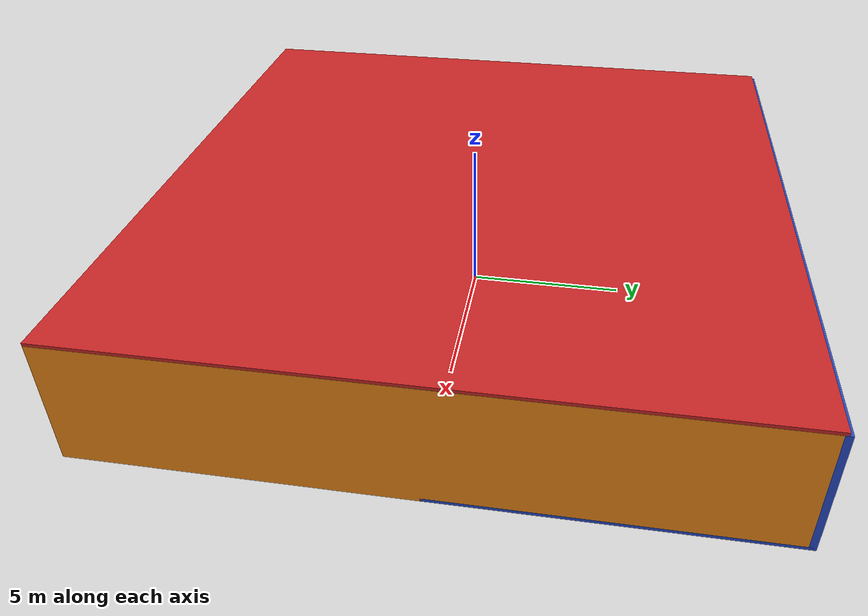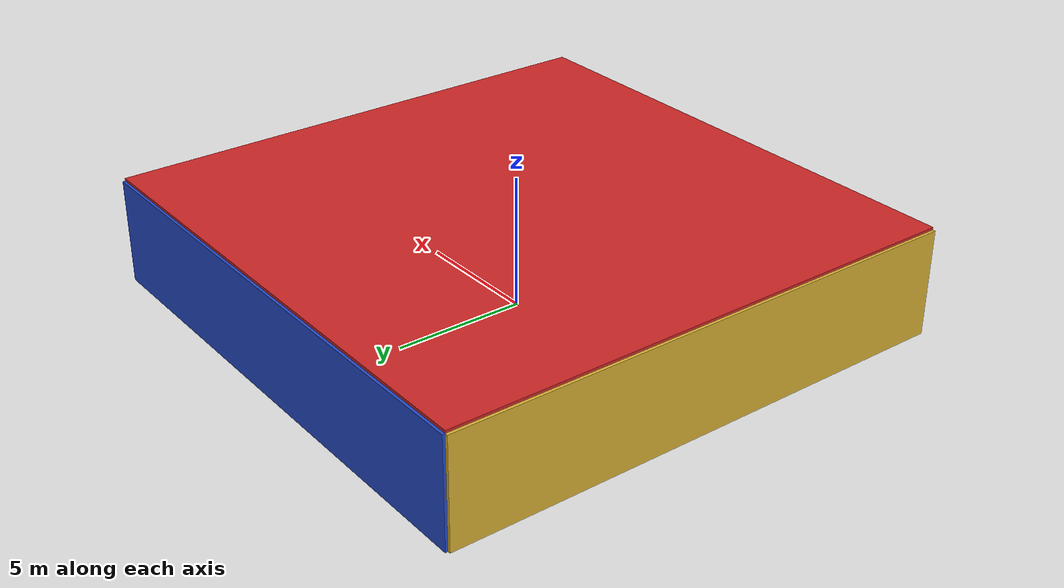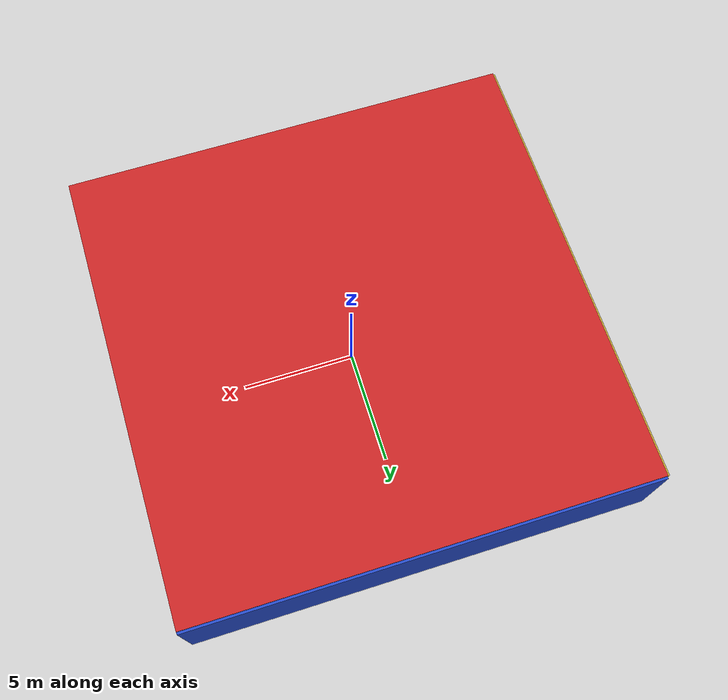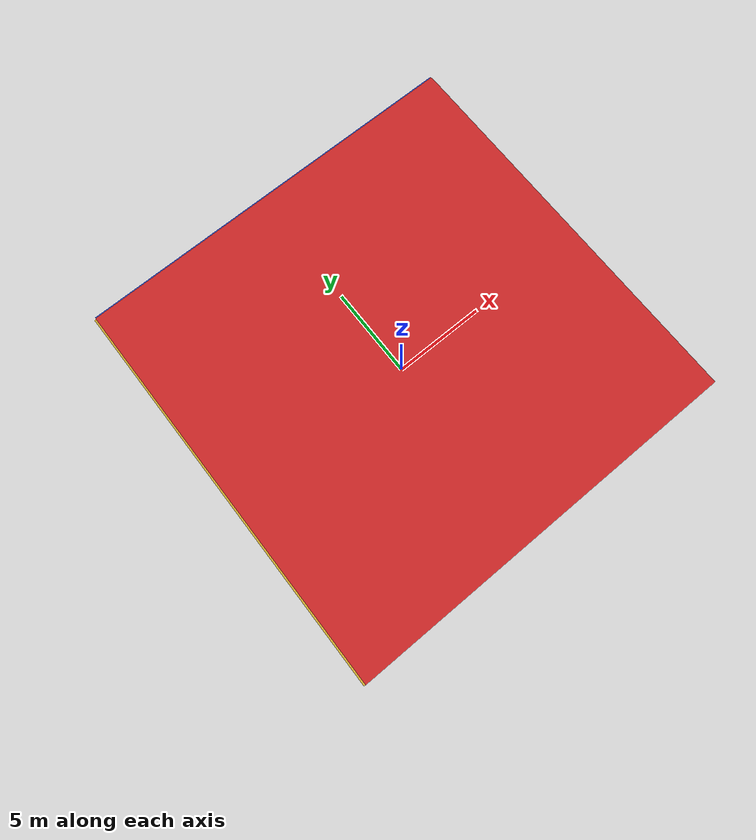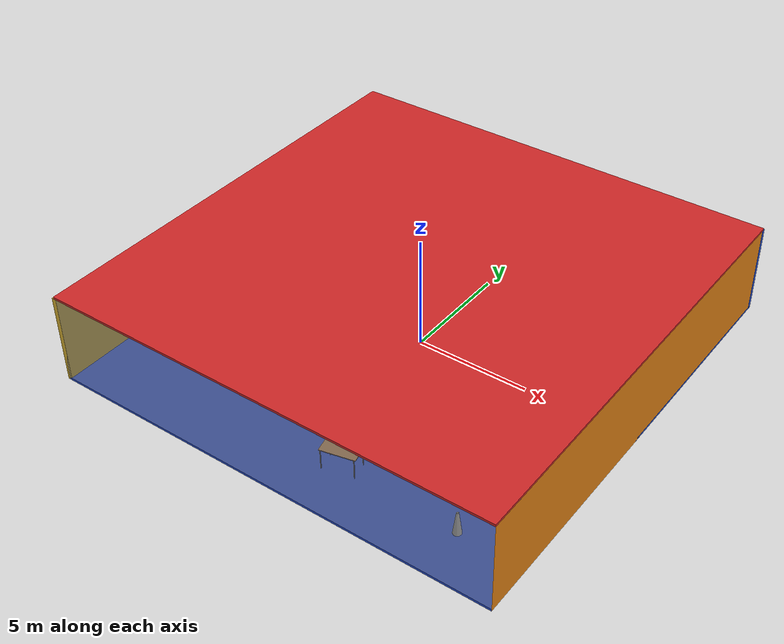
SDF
<sdf version="1.4">
 <world name="default">
  <physics type="ode">
   <max_step_size>0.001</max_step_size>
   <real_time_factor>1</real_time_factor>
   <real_time_update_rate>1000</real_time_update_rate>
   <gravity>0 0 -9.8</gravity>
  </physics>
  <scene><ambient>0.4 0.4 0.4 1</ambient><background>0.7 0.7 0.7 1</background><shadows>1</shadows></scene>
  <model name="Surrounding">
   <static>1</static>
   <link name="Ceiling">
    <collision name="Ceiling_Collision"><geometry><box><size>20 20 0.1</size></box></geometry></collision>
    <visual name="Ceiling_Visual">
     <geometry><box><size>20 20 0.1</size></box></geometry>
     <material>
      <script><uri>file://media/materials/scripts/gazebo.material</uri><name>Gazebo/Red</name></script>
     </material>
    </visual>
    <pose>0 0 4.05 0 0 0</pose>
   </link>
   <link name="Wall_South">
    <collision name="Wall_South_Collision">
     <geometry><box><size>20 0 4</size></box></geometry>
     <pose>0 0 2 0 -0 0</pose>
    </collision>
    <visual name="Wall_South_Visual">
     <pose>0 0 2 0 -0 0</pose>
     <geometry><box><size>20 0 4</size></box></geometry>
     <material>
      <script><uri>file://media/materials/scripts/gazebo.material</uri><name>Gazebo/GreyTransparent</name></script>
     </material>
    </visual>
    <velocity_decay><linear>0</linear><angular>0</angular></velocity_decay>
    <pose>0 -10 0 0 -0 0</pose>
   </link>
   <link name="Wall_East">
    <collision name="Wall_21_Collision">
     <geometry><box><size>20 0 4</size></box></geometry>
     <pose>0 0 2 0 -0 0</pose>
    </collision>
    <visual name="Wall_21_Visual">
     <pose>0 0 2 0 -0 0</pose>
     <geometry><box><size>20 0 4</size></box></geometry>
     <material>
      <script><uri>file://media/materials/scripts/gazebo.material</uri><name>Gazebo/Orange</name></script>
     </material>
    </visual>
    <velocity_decay><linear>0</linear><angular>0</angular></velocity_decay>
    <pose>10 0 0 0 -0 1.5708</pose>
   </link>
   <link name="Wall_North">
    <collision name="Wall_22_Collision">
     <geometry><box><size>20 0.2 4</size></box></geometry>
     <pose>0 0 2 0 -0 0</pose>
    </collision>
    <visual name="Wall_22_Visual">
     <pose>0 0 2 0 -0 0</pose>
     <geometry><box><size>20 0.2 4</size></box></geometry>
     <material>
      <script><uri>file://media/materials/scripts/gazebo.material</uri><name>Gazebo/Blue</name></script>
     </material>
    </visual>
    <velocity_decay><linear>0</linear><angular>0</angular></velocity_decay>
    <pose>0 10 0 0 -0 0</pose>
   </link>
   <link name="Wall_West">
    <collision name="Wall_23_Collision">
     <geometry><box><size>20 0.2 4</size></box></geometry>
     <pose>0 0 2 0 -0 0</pose>
    </collision>
    <visual name="Wall_23_Visual">
     <pose>0 0 2 0 -0 0</pose>
     <geometry><box><size>20 0.2 4</size></box></geometry>
     <material>
      <script><uri>file://media/materials/scripts/gazebo.material</uri><name>Gazebo/Gold</name></script>
     </material>
    </visual>
    <velocity_decay><linear>0</linear><angular>0</angular></velocity_decay>
    <pose>-10 0 0 0 0 -1.5708</pose>
   </link>
   <link name="Ground_link">
    <collision name="collision">
     <pose>0 0 .05 0 -0 0</pose>
     <geometry><box><size>20 20 0.1</size></box></geometry>
    </collision>
    <visual name="visual">
     <pose>0 0 .05 0 -0 0</pose>
     <geometry><box><size>20 20 0.1</size></box></geometry>
     <material>
      <script><uri>file://media/materials/scripts/gazebo.material</uri><name>Gazebo/Blue</name></script>
     </material>
    </visual>
   </link>
   <static>1</static>
  </model>
  <spherical_coordinates>
   <surface_model>EARTH_WGS84</surface_model>
   <latitude_deg>0</latitude_deg>
   <longitude_deg>0</longitude_deg>
   <elevation>0</elevation>
   <heading_deg>0</heading_deg>
  </spherical_coordinates>
  <light name="lightball_0" type="diffuse">
   <diffuse>0.8 0.8 0.8 1</diffuse>
   <specular>0.2 0.2 0.2 1</specular>
   <attenuation>
    <range>100</range>
    <constant>0.7</constant>
    <linear>0.01</linear>
    <quadratic>0.001</quadratic>
   </attenuation>
   <direction>-0.5 0.1 -0.9</direction>
   <pose>2.17305843992 1.36471770103 2.611370943 0 0 0</pose>
  </light>
  <light name="lightball_1" type="diffuse">
   <diffuse>0.8 0.8 0.8 1</diffuse>
   <specular>0.2 0.2 0.2 1</specular>
   <attenuation>
    <range>100</range>
    <constant>0.7</constant>
    <linear>0.01</linear>
    <quadratic>0.001</quadratic>
   </attenuation>
   <direction>-0.5 0.1 -0.9</direction>
   <pose>-4.76901258983 4.87339151621 3.73119985481 0 0 0</pose>
  </light>
  <light name="lightball_2" type="diffuse">
   <diffuse>0.8 0.8 0.8 1</diffuse>
   <specular>0.2 0.2 0.2 1</specular>
   <attenuation>
    <range>100</range>
    <constant>0.7</constant>
    <linear>0.01</linear>
    <quadratic>0.001</quadratic>
   </attenuation>
   <direction>-0.5 0.1 -0.9</direction>
   <pose>2.91544557779 -0.584286462981 2.58790182389 0 0 0</pose>
  </light>
  <light name="lightball_3" type="diffuse">
   <diffuse>0.8 0.8 0.8 1</diffuse>
   <specular>0.2 0.2 0.2 1</specular>
   <attenuation>
    <range>100</range>
    <constant>0.7</constant>
    <linear>0.01</linear>
    <quadratic>0.001</quadratic>
   </attenuation>
   <direction>-0.5 0.1 -0.9</direction>
   <pose>6.88723795913 -2.91094983466 2.4075429363 0 0 0</pose>
  </light>
  <include><uri>model://table</uri><pose>1.90975543747 -7.64242599549 0 0 0 0.21630113805</pose></include>
  <include>
   <uri>model://construction_cone</uri>
   <pose>1.48726757587 7.16257394565 0 0 0 0.561137591114</pose>
  </include>
  <include>
   <uri>model://construction_cone</uri>
   <pose>7.18095831067 -7.87780362027 0 0 0 2.1545833686</pose>
  </include>
 </world>
</sdf>

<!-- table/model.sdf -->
<sdf version="1.5">
  <model name="table">
    <static>true</static>
    <link name="link">
      <collision name="surface">
        <pose>0 0 1.0 0 0 0</pose>
        <geometry>
          <box>
            <size>1.5 0.8 0.03</size>
          </box>
        </geometry>
        <surface>
          <friction>
            <ode>
              <mu>0.6</mu>
              <mu2>0.6</mu2>
            </ode>
          </friction>
        </surface>
      </collision>
      <visual name="visual1">
        <pose>0 0 1.0 0 0 0</pose>
        <geometry>
          <box>
            <size>1.5 0.8 0.03</size>
          </box>
        </geometry>
        <material>
          <script>
            <uri>model://media/materials/scripts/gazebo.material</uri>
            <name>Gazebo/Wood</name>
          </script>
        </material>
      </visual>
      <collision name="front_left_leg">
        <pose>0.68 0.38 0.5 0 0 0</pose>
        <geometry>
          <cylinder>
            <radius>0.02</radius>
            <length>1.0</length>
          </cylinder>
        </geometry>
      </collision>
      <visual name="front_left_leg">
        <pose>0.68 0.38 0.5 0 0 0</pose>
        <geometry>
          <cylinder>
            <radius>0.02</radius>
            <length>1.0</length>
          </cylinder>
        </geometry>
        <material>
          <script>
            <uri>model://media/materials/scripts/gazebo.material</uri>
            <name>Gazebo/Grey</name>
          </script>
        </material>
      </visual>
      <collision name="front_right_leg">
        <pose>0.68 -0.38 0.5 0 0 0</pose>
        <geometry>
          <cylinder>
            <radius>0.02</radius>
            <length>1.0</length>
          </cylinder>
        </geometry>
      </collision>
      <visual name="front_right_leg">
        <pose>0.68 -0.38 0.5 0 0 0</pose>
        <geometry>
          <cylinder>
            <radius>0.02</radius>
            <length>1.0</length>
          </cylinder>
        </geometry>
        <material>
          <script>
            <uri>model://media/materials/scripts/gazebo.material</uri>
            <name>Gazebo/Grey</name>
          </script>
        </material>
      </visual>
      <collision name="back_right_leg">
        <pose>-0.68 -0.38 0.5 0 0 0</pose>
        <geometry>
          <cylinder>
            <radius>0.02</radius>
            <length>1.0</length>
          </cylinder>
        </geometry>
      </collision>
      <visual name="back_right_leg">
        <pose>-0.68 -0.38 0.5 0 0 0</pose>
        <geometry>
          <cylinder>
            <radius>0.02</radius>
            <length>1.0</length>
          </cylinder>
        </geometry>
        <material>
          <script>
            <uri>model://media/materials/scripts/gazebo.material</uri>
            <name>Gazebo/Grey</name>
          </script>
        </material>
      </visual>
      <collision name="back_left_leg">
        <pose>-0.68 0.38 0.5 0 0 0</pose>
        <geometry>
          <cylinder>
            <radius>0.02</radius>
            <length>1.0</length>
          </cylinder>
        </geometry>
      </collision>
      <visual name="back_left_leg">
        <pose>-0.68 0.38 0.5 0 0 0</pose>
        <geometry>
          <cylinder>
            <radius>0.02</radius>
            <length>1.0</length>
          </cylinder>
        </geometry>
        <material>
          <script>
            <uri>model://media/materials/scripts/gazebo.material</uri>
            <name>Gazebo/Grey</name>
          </script>
        </material>
      </visual>
    </link>
  </model>
</sdf>

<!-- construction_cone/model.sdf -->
<sdf version="1.5">
  <model name="Construction Cone">
    <link name="link">
      <collision name="collision">
        <geometry>
          <mesh>
            <scale>10 10 10</scale>
            <uri>file://isr-testbed/construction_cone/meshes/construction_cone.dae</uri>
          </mesh>
        </geometry>
      </collision>
      <visual name="visual">
        <geometry>
          <mesh>
            <scale>10 10 10</scale>
            <uri>file://isr-testbed/construction_cone/meshes/construction_cone.dae</uri>
          </mesh>
        </geometry>
      </visual>
    </link>
  </model>
</sdf>
